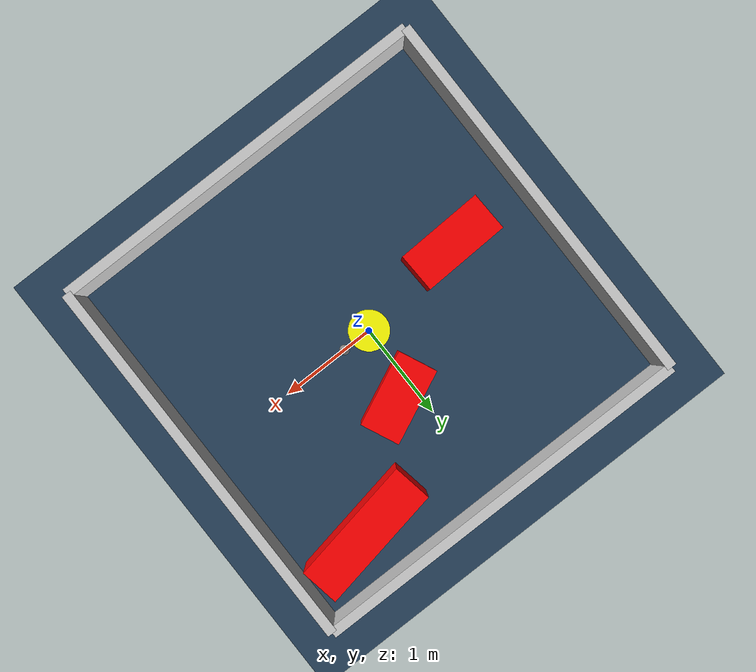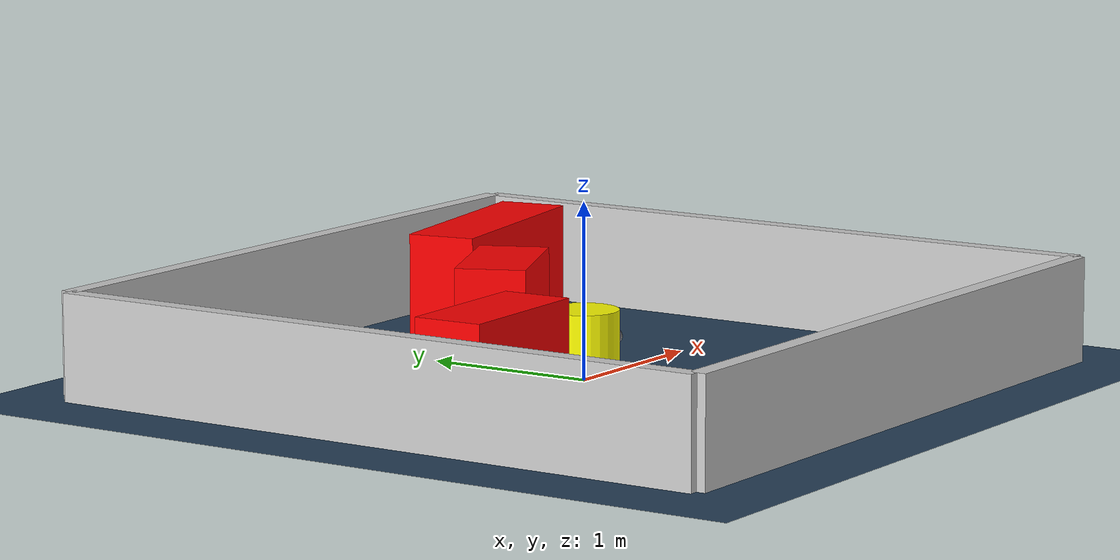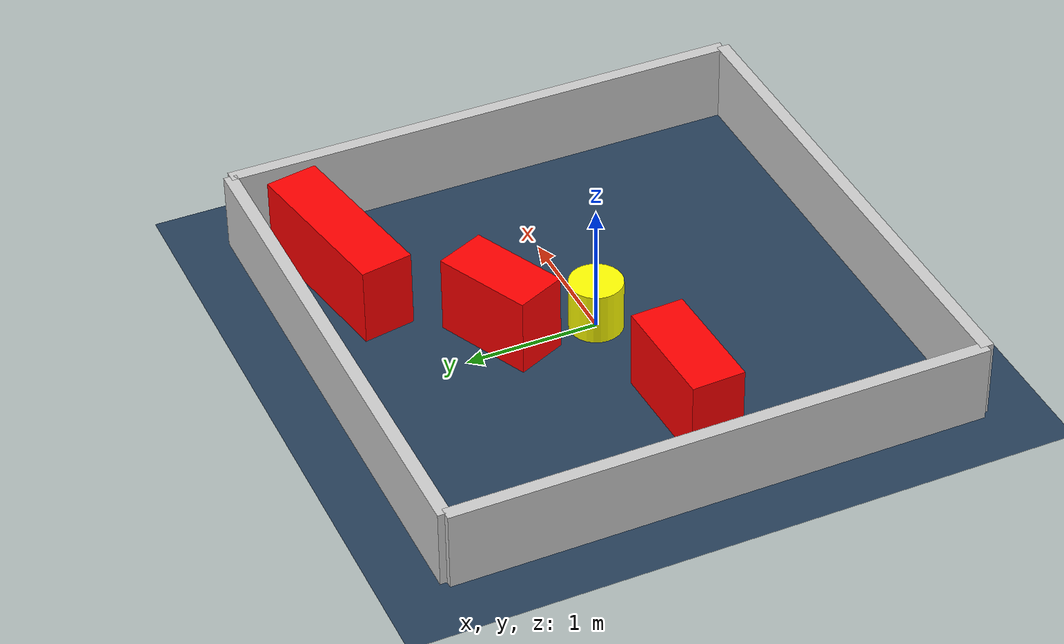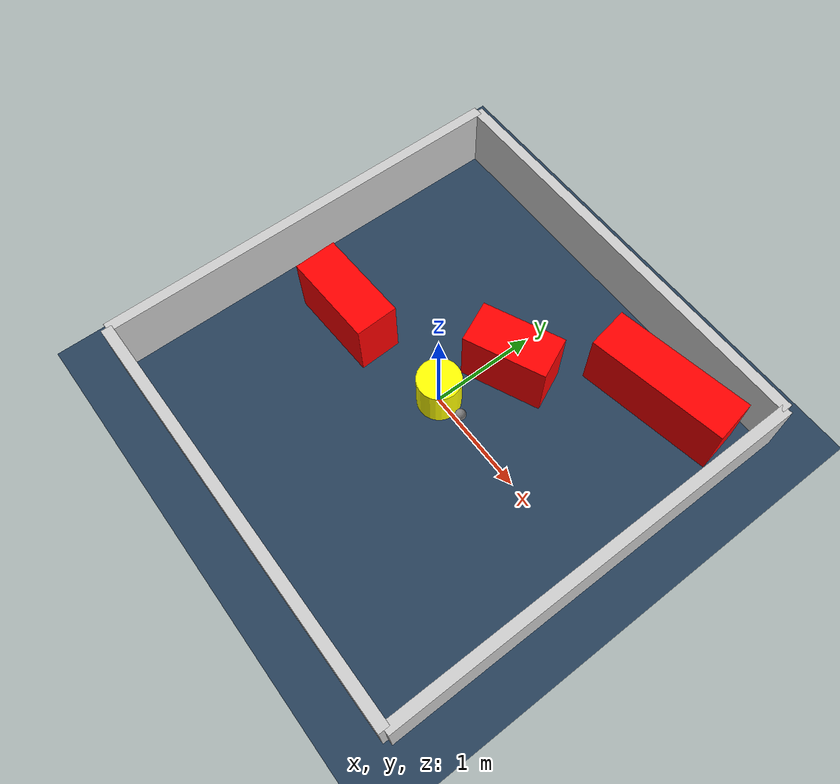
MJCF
<?xml version="1.0" ?>
<mujoco model="generated_environment">
  <option timestep="0.01" integrator="RK4" cone="elliptic"/>
  <default>
    <geom density="1"/>
  </default>
  <asset>
    <texture builtin="gradient" height="3072" rgb1="0.3 0.5 0.7" rgb2="0 0 0" type="skybox" width="512"/>
    <texture builtin="checker" height="300" mark="edge" markrgb="0.8 0.8 0.8" name="groundplane" rgb1="0.2 0.3 0.4" rgb2="0.1 0.2 0.3" type="2d" width="300"/>
    <material name="groundplane" reflectance="0.2" texrepeat="5 5" texture="groundplane" texuniform="true"/>
    <material name="robot" rgba="0.0 1.0 0.0 1"/>
  </asset>
  <worldbody>
    <light dir="0 0 -1" directional="true" pos="0 0 1.5"/>
    <geom condim="4" friction="1.0 0.005 0.001" material="groundplane" name="floor" size="0 0 0.05" type="plane"/>
    <body name="walls">
      <geom name="wall_1" condim="4" pos="-2.0 0.0 0.3" rgba="0.800000011920929 0.800000011920929 0.800000011920929 1.0" size="0.05 2.0 0.3" type="box"/>
      <geom name="wall_2" condim="4" pos="2.0 0.0 0.3" rgba="0.800000011920929 0.800000011920929 0.800000011920929 1.0" size="0.05 2.0 0.3" type="box"/>
      <geom name="wall_3" condim="4" pos="0.0 -2.0 0.3" rgba="0.800000011920929 0.800000011920929 0.800000011920929 1.0" size="2.0 0.05 0.3" type="box"/>
      <geom name="wall_4" condim="4" pos="0.0 2.0 0.3" rgba="0.800000011920929 0.800000011920929 0.800000011920929 1.0" size="2.0 0.05 0.3" type="box"/>
    </body>
    <body name="robot">
      <joint name="joint_x" type="slide" pos="0 0 0" axis="1 0 0"/>
      <joint name="joint_y" type="slide" pos="0 0 0" axis="0 1 0"/>
      <geom name="robot" type="sphere" pos="0.3 0.0 0.2" size="0.05" mass="5." friction="1.0 0.005 0.0001" condim="4" rgba="0.5 0.5 0.5 1.0"/>
      <site name="sensor_ball"/>
    </body>
    <body name="obstacle_movable_1">
      <geom name="obstacle_movable_1" condim="4" pos="0.0 0.0 0.2" euler="0 0 0.0" friction="1.0 0.005 0.001" rgba="1.0 1.0 0.0 1.0" size="0.2 0.2 0.0" type="cylinder" mass="0.1"/>
      <joint type="free"/>
    </body>
    <body name="obstacle_2_static">
      <geom name="obstacle_2_static" condim="4" pos="0.16810486017835147 0.6619154004864523 0.3" euler="0 0 24.391516338561345" friction="1.0 0.005 0.001" rgba="1 0 0 1" size="0.3849348294648334 0.2 0.3" type="box"/>
    </body>
    <body name="obstacle_3_static">
      <geom name="obstacle_3_static" condim="4" pos="-1.1158309034161407 -0.1655945603547737 0.3" euler="0 0 182.27731080576228" friction="1.0 0.005 0.001" rgba="1 0 0 1" size="0.44426578164078323 0.2 0.3" type="box"/>
    </body>
    <body name="obstacle_4_static">
      <geom name="obstacle_4_static" condim="4" pos="1.1944663665847424 1.4748762359945118 0.3" euler="0 0 10.190554660972722" friction="1.0 0.005 0.001" rgba="1 0 0 1" size="0.650149615287828 0.2 0.3" type="box"/>
    </body>
  </worldbody>
  <actuator>
    <motor name="actuator_x" joint="joint_x" gear="1" ctrlrange="-1 1"/>
    <motor name="actuator_y" joint="joint_y" gear="1" ctrlrange="-1 1"/>
  </actuator>
</mujoco>
